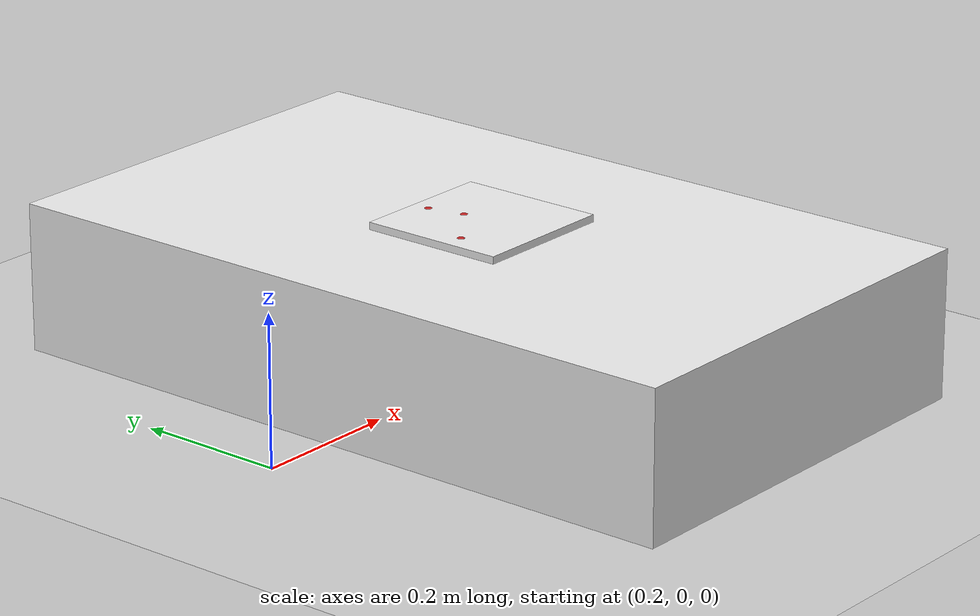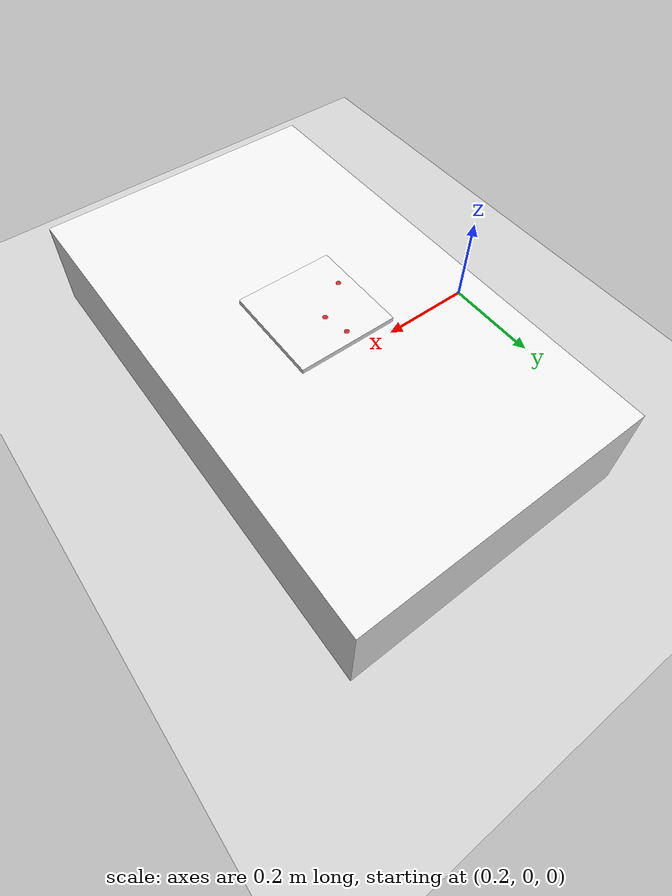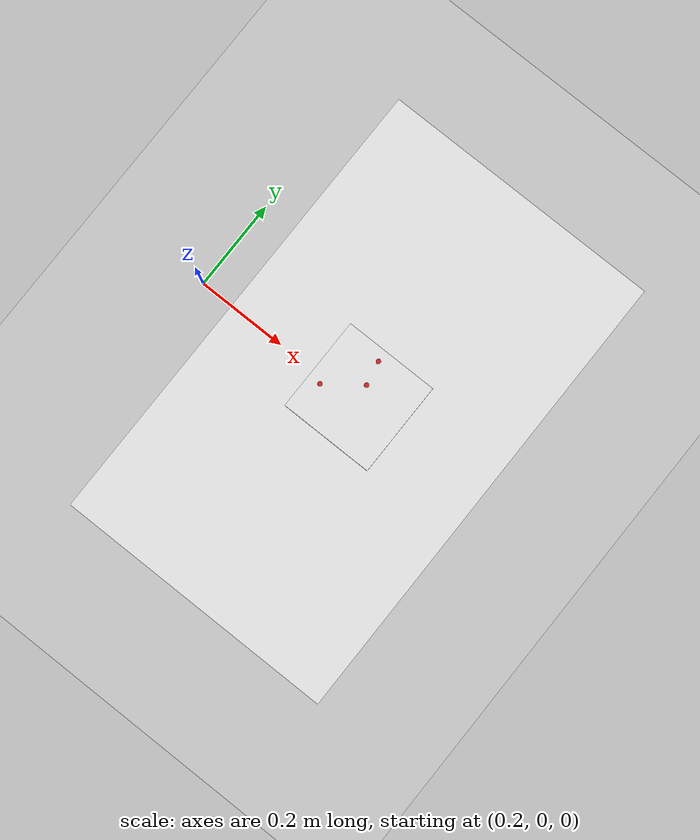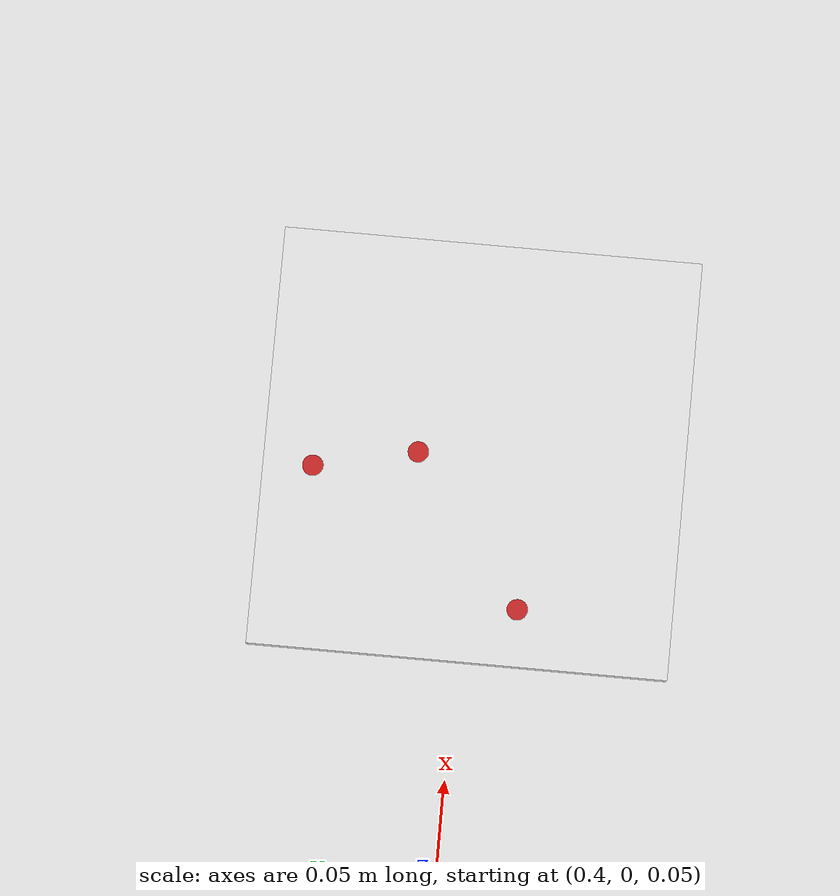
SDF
<sdf version="1.7">
 <world name="panda_pick_and_place">
  <light name="sun" type="directional">
   <pose>0 0 10 0 -0 0</pose>
   <diffuse>0.8 0.8 0.8 1</diffuse>
   <specular>0.2 0.2 0.2 1</specular>
   <attenuation>
    <range>1000</range>
    <constant>0.9</constant>
    <linear>0.01</linear>
    <quadratic>0.001</quadratic>
   </attenuation>
   <direction>-0.5 0.1 -0.9</direction>
   <spot><inner_angle>0</inner_angle><outer_angle>0</outer_angle><falloff>0</falloff></spot>
  </light>
  <model name="ground_plane">
   <static>1</static>
   <link name="link">
    <collision name="collision">
     <geometry><plane><normal>0 0 1</normal><size>100 100</size></plane></geometry>
     <surface>
      <contact><collide_bitmask>65535</collide_bitmask></contact>
      <friction><ode><mu>100</mu><mu2>50</mu2></ode></friction>
     </surface>
    </collision>
    <visual name="visual">
     <cast_shadows>0</cast_shadows>
     <geometry><plane><normal>0 0 1</normal><size>100 100</size></plane></geometry>
     <material>
      <script><uri>file://media/materials/scripts/gazebo.material</uri><name>Gazebo/Grey</name></script>
     </material>
    </visual>
   </link>
  </model>
  <plugin name="panda_joint_locker" filename="libpanda_gazebo.so"/>
  <gravity>0 0 -9.8</gravity>
  <magnetic_field>6e-06 2.3e-05 -4.2e-05</magnetic_field>
  <atmosphere type="adiabatic"/>
  <physics type="ode">
   <max_step_size>0.001</max_step_size>
   <real_time_factor>1</real_time_factor>
   <real_time_update_rate>1000</real_time_update_rate>
  </physics>
  <scene><ambient>0.4 0.4 0.4 1</ambient><background>0.7 0.7 0.7 1</background><shadows>1</shadows></scene>
  <spherical_coordinates>
   <surface_model>EARTH_WGS84</surface_model>
   <latitude_deg>0</latitude_deg>
   <longitude_deg>0</longitude_deg>
   <elevation>0</elevation>
   <heading_deg>0</heading_deg>
  </spherical_coordinates>
  <model name="table">
   <link name="link">
    <inertial>
     <mass>1</mass>
     <inertia>
      <ixx>0.166667</ixx>
      <ixy>0</ixy>
      <ixz>0</ixz>
      <iyy>0.166667</iyy>
      <iyz>0</iyz>
      <izz>0.166667</izz>
     </inertia>
    </inertial>
    <visual name="visual">
     <geometry><box><size>0.6 1 0.2</size></box></geometry>
     <material>
      <script><name>Gazebo/White</name><uri>file://media/materials/scripts/gazebo.material</uri></script>
      <shader type="pixel"><normal_map>__default__</normal_map></shader>
      <ambient>0.3 0.3 0.3 1</ambient>
      <diffuse>0.7 0.7 0.7 1</diffuse>
      <specular>0.01 0.01 0.01 1</specular>
      <emissive>0 0 0 1</emissive>
     </material>
    </visual>
    <collision name="collision">
     <geometry><box><size>0.6 1 0.2</size></box></geometry>
     <surface>
      <friction>
       <ode><mu>1</mu><mu2>1</mu2><fdir1>0 0 0</fdir1><slip1>0</slip1><slip2>0</slip2></ode>
       <torsional>
        <coefficient>1</coefficient>
        <patch_radius>0</patch_radius>
        <surface_radius>0</surface_radius>
        <use_patch_radius>1</use_patch_radius>
        <ode><slip>0</slip></ode>
       </torsional>
      </friction>
      <bounce><restitution_coefficient>0</restitution_coefficient><threshold>1e+06</threshold></bounce>
      <contact>
       <collide_without_contact>0</collide_without_contact>
       <collide_without_contact_bitmask>1</collide_without_contact_bitmask>
       <collide_bitmask>1</collide_bitmask>
       <ode>
        <soft_cfm>0</soft_cfm>
        <soft_erp>0.2</soft_erp>
        <kp>1e+13</kp>
        <kd>1</kd>
        <max_vel>0.01</max_vel>
        <min_depth>0</min_depth>
       </ode>
       <bullet>
        <split_impulse>1</split_impulse>
        <split_impulse_penetration_threshold>-0.01</split_impulse_penetration_threshold>
        <soft_cfm>0</soft_cfm>
        <soft_erp>0.2</soft_erp>
        <kp>1e+13</kp>
        <kd>1</kd>
       </bullet>
      </contact>
     </surface>
    </collision>
   </link>
   <static>1</static>
   <pose>0.6 0 0.1 6e-06 -0 0</pose>
  </model>
  <model name="workpiece">
   <link name="link">
    <inertial>
     <mass>1</mass>
     <inertia>
      <ixx>0.166667</ixx>
      <ixy>0</ixy>
      <ixz>0</ixz>
      <iyy>0.166667</iyy>
      <iyz>0</iyz>
      <izz>0.166667</izz>
     </inertia>
    </inertial>
    <visual name="visual">
     <geometry><box><size>0.2 0.2 0.01</size></box></geometry>
     <material>
      <script><name>Gazebo/White</name><uri>file://media/materials/scripts/gazebo.material</uri></script>
      <shader type="pixel"><normal_map>__default__</normal_map></shader>
      <ambient>1 1 1 1</ambient>
      <diffuse>1 1 1 1</diffuse>
      <specular>0 0 0 1</specular>
      <emissive>0 0 0 1</emissive>
     </material>
    </visual>
    <collision name="collision">
     <geometry><box><size>0.2 0.2 0.01</size></box></geometry>
     <surface>
      <friction>
       <ode><mu>1</mu><mu2>1</mu2><fdir1>0 0 0</fdir1><slip1>0</slip1><slip2>0</slip2></ode>
       <torsional>
        <coefficient>1</coefficient>
        <patch_radius>0</patch_radius>
        <surface_radius>0</surface_radius>
        <use_patch_radius>1</use_patch_radius>
        <ode><slip>0</slip></ode>
       </torsional>
      </friction>
      <bounce><restitution_coefficient>0</restitution_coefficient><threshold>1e+06</threshold></bounce>
      <contact>
       <collide_without_contact>0</collide_without_contact>
       <collide_without_contact_bitmask>1</collide_without_contact_bitmask>
       <collide_bitmask>1</collide_bitmask>
       <ode>
        <soft_cfm>0</soft_cfm>
        <soft_erp>0.2</soft_erp>
        <kp>1e+13</kp>
        <kd>1</kd>
        <max_vel>0.01</max_vel>
        <min_depth>0</min_depth>
       </ode>
       <bullet>
        <split_impulse>1</split_impulse>
        <split_impulse_penetration_threshold>-0.01</split_impulse_penetration_threshold>
        <soft_cfm>0</soft_cfm>
        <soft_erp>0.2</soft_erp>
        <kp>1e+13</kp>
        <kd>1</kd>
       </bullet>
      </contact>
     </surface>
    </collision>
   </link>
   <static>1</static>
   <pose>0.6 0 0.205 6e-06 -0 0</pose>
  </model>
  <model name="hole_1">
   <link name="link">
    <inertial>
     <mass>1</mass>
     <inertia><ixx>0.145833</ixx><ixy>0</ixy><ixz>0</ixz><iyy>0.145833</iyy><iyz>0</iyz><izz>0.125</izz></inertia>
    </inertial>
    <visual name="visual">
     <geometry><cylinder><radius>0.005</radius><length>0.0001</length></cylinder></geometry>
     <material>
      <script><name>Gazebo/Red</name><uri>file://media/materials/scripts/gazebo.material</uri></script>
      <shader type="pixel"><normal_map>__default__</normal_map></shader>
      <ambient>1 0 0 1</ambient>
      <diffuse>1 0 0 1</diffuse>
      <specular>0.1 0.1 0.1 1</specular>
      <emissive>0 0 0 1</emissive>
     </material>
    </visual>
    <collision name="collision">
     <geometry><cylinder><radius>0.005</radius><length>0.0001</length></cylinder></geometry>
     <surface>
      <friction>
       <ode><mu>1</mu><mu2>1</mu2><fdir1>0 0 0</fdir1><slip1>0</slip1><slip2>0</slip2></ode>
       <torsional>
        <coefficient>1</coefficient>
        <patch_radius>0</patch_radius>
        <surface_radius>0</surface_radius>
        <use_patch_radius>1</use_patch_radius>
        <ode><slip>0</slip></ode>
       </torsional>
      </friction>
      <bounce><restitution_coefficient>0</restitution_coefficient><threshold>1e+06</threshold></bounce>
      <contact>
       <collide_without_contact>0</collide_without_contact>
       <collide_without_contact_bitmask>1</collide_without_contact_bitmask>
       <collide_bitmask>1</collide_bitmask>
       <ode>
        <soft_cfm>0</soft_cfm>
        <soft_erp>0.2</soft_erp>
        <kp>1e+13</kp>
        <kd>1</kd>
        <max_vel>0.01</max_vel>
        <min_depth>0</min_depth>
       </ode>
       <bullet>
        <split_impulse>1</split_impulse>
        <split_impulse_penetration_threshold>-0.01</split_impulse_penetration_threshold>
        <soft_cfm>0</soft_cfm>
        <soft_erp>0.2</soft_erp>
        <kp>1e+13</kp>
        <kd>1</kd>
       </bullet>
      </contact>
     </surface>
    </collision>
   </link>
   <static>1</static>
   <pose>0.5271 -0.026543 0.210009 0 -0 0</pose>
  </model>
  <model name="hole_2">
   <link name="link">
    <inertial>
     <mass>1</mass>
     <inertia><ixx>0.145833</ixx><ixy>0</ixy><ixz>0</ixz><iyy>0.145833</iyy><iyz>0</iyz><izz>0.125</izz></inertia>
    </inertial>
    <visual name="visual">
     <geometry><cylinder><radius>0.005</radius><length>0.0001</length></cylinder></geometry>
     <material>
      <script><name>Gazebo/Red</name><uri>file://media/materials/scripts/gazebo.material</uri></script>
      <shader type="pixel"><normal_map>__default__</normal_map></shader>
      <ambient>1 0 0 1</ambient>
      <diffuse>1 0 0 1</diffuse>
      <specular>0.1 0.1 0.1 1</specular>
      <emissive>0 0 0 1</emissive>
     </material>
    </visual>
    <collision name="collision">
     <geometry><cylinder><radius>0.005</radius><length>0.0001</length></cylinder></geometry>
     <surface>
      <friction>
       <ode><mu>1</mu><mu2>1</mu2><fdir1>0 0 0</fdir1><slip1>0</slip1><slip2>0</slip2></ode>
       <torsional>
        <coefficient>1</coefficient>
        <patch_radius>0</patch_radius>
        <surface_radius>0</surface_radius>
        <use_patch_radius>1</use_patch_radius>
        <ode><slip>0</slip></ode>
       </torsional>
      </friction>
      <bounce><restitution_coefficient>0</restitution_coefficient><threshold>1e+06</threshold></bounce>
      <contact>
       <collide_without_contact>0</collide_without_contact>
       <collide_without_contact_bitmask>1</collide_without_contact_bitmask>
       <collide_bitmask>1</collide_bitmask>
       <ode>
        <soft_cfm>0</soft_cfm>
        <soft_erp>0.2</soft_erp>
        <kp>1e+13</kp>
        <kd>1</kd>
        <max_vel>0.01</max_vel>
        <min_depth>0</min_depth>
       </ode>
       <bullet>
        <split_impulse>1</split_impulse>
        <split_impulse_penetration_threshold>-0.01</split_impulse_penetration_threshold>
        <soft_cfm>0</soft_cfm>
        <soft_erp>0.2</soft_erp>
        <kp>1e+13</kp>
        <kd>1</kd>
       </bullet>
      </contact>
     </surface>
    </collision>
   </link>
   <static>1</static>
   <pose>0.597786 0.026851 0.210009 0 -0 0</pose>
  </model>
  <model name="hole_3">
   <link name="link">
    <inertial>
     <mass>1</mass>
     <inertia><ixx>0.145833</ixx><ixy>0</ixy><ixz>0</ixz><iyy>0.145833</iyy><iyz>0</iyz><izz>0.125</izz></inertia>
    </inertial>
    <visual name="visual">
     <geometry><cylinder><radius>0.005</radius><length>0.0001</length></cylinder></geometry>
     <material>
      <script><name>Gazebo/Red</name><uri>file://media/materials/scripts/gazebo.material</uri></script>
      <shader type="pixel"><normal_map>__default__</normal_map></shader>
      <ambient>1 0 0 1</ambient>
      <diffuse>1 0 0 1</diffuse>
      <specular>0.1 0.1 0.1 1</specular>
      <emissive>0 0 0 1</emissive>
     </material>
    </visual>
    <collision name="collision">
     <geometry><cylinder><radius>0.005</radius><length>0.0001</length></cylinder></geometry>
     <surface>
      <friction>
       <ode><mu>1</mu><mu2>1</mu2><fdir1>0 0 0</fdir1><slip1>0</slip1><slip2>0</slip2></ode>
       <torsional>
        <coefficient>1</coefficient>
        <patch_radius>0</patch_radius>
        <surface_radius>0</surface_radius>
        <use_patch_radius>1</use_patch_radius>
        <ode><slip>0</slip></ode>
       </torsional>
      </friction>
      <bounce><restitution_coefficient>0</restitution_coefficient><threshold>1e+06</threshold></bounce>
      <contact>
       <collide_without_contact>0</collide_without_contact>
       <collide_without_contact_bitmask>1</collide_without_contact_bitmask>
       <collide_bitmask>1</collide_bitmask>
       <ode>
        <soft_cfm>0</soft_cfm>
        <soft_erp>0.2</soft_erp>
        <kp>1e+13</kp>
        <kd>1</kd>
        <max_vel>0.01</max_vel>
        <min_depth>0</min_depth>
       </ode>
       <bullet>
        <split_impulse>1</split_impulse>
        <split_impulse_penetration_threshold>-0.01</split_impulse_penetration_threshold>
        <soft_cfm>0</soft_cfm>
        <soft_erp>0.2</soft_erp>
        <kp>1e+13</kp>
        <kd>1</kd>
       </bullet>
      </contact>
     </surface>
    </collision>
   </link>
   <static>1</static>
   <pose>0.586935 0.076158 0.210008 0 -0 0</pose>
  </model>
 </world>
</sdf>
